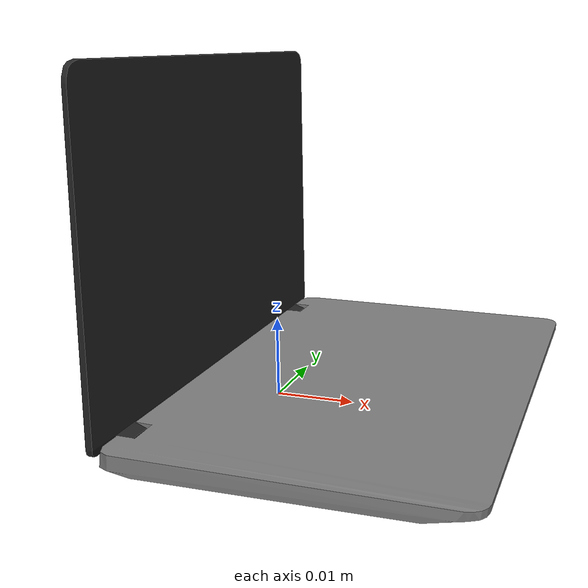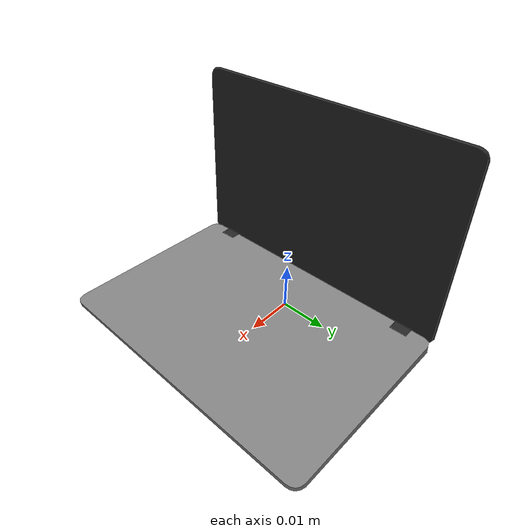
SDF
<?xml version="1.0" ?>
<sdf version="1.6">
  <model name="laptop">
    <static>true</static>

    <link name="laptop_link">
      <visual name="visual">
        <geometry>
          <mesh>
            <uri>model://laptop/meshes/laptop.dae</uri>
            <scale>0.20 0.20 0.20</scale>
          </mesh>
        </geometry>
      </visual>

      <collision name="collision">
        <geometry>
          <mesh>
            <uri>model://laptop/meshes/laptop.dae</uri>
            <scale>0.20 0.20 0.20</scale>
          </mesh>
        </geometry>
      </collision>
    </link>
  </model>
</sdf>
